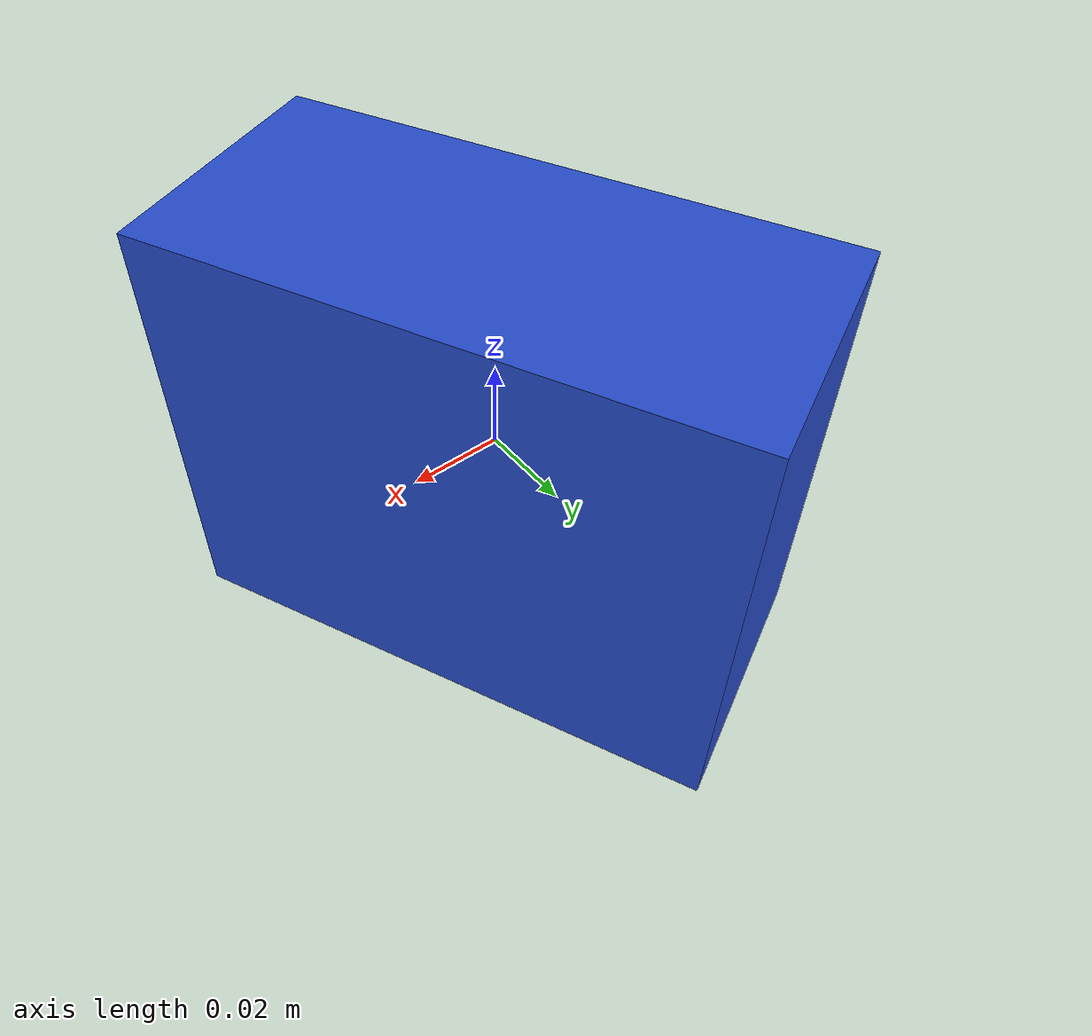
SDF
<sdf version="1.6"><model name="model_7"><static>true</static><link name="link"><pose>0 0 0 0 0 2.0159093845448894</pose><collision name="collision"><geometry><box><size>0.12388727587379321 0.05699651121530833 0.1</size></box></geometry></collision><visual name="visual"><geometry><box><size>0.12388727587379321 0.05699651121530833 0.1</size></box></geometry><material><script><name>Gazebo/Blue</name><uri>file://media/materials/scripts/gazebo.material</uri></script></material></visual></link></model></sdf>
